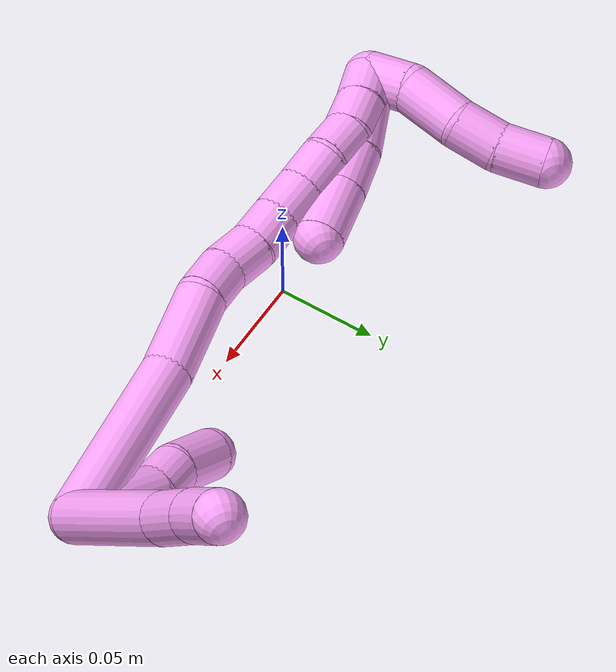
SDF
<sdf version="1.7">
 <world name="default">
  <model name="4">
   <static>0</static>
   <link name="4">
    <collision name="collision-cylinder-e_1_2_8">
     <pose>0.007621 -0.029574 0.032305 0.741284 0.172274 0.067087</pose>
     <geometry><cylinder><radius>0.0125</radius><length>0.088912</length></cylinder></geometry>
     <surface>
      <friction><ode><mu>1.16</mu><mu2>1.16</mu2><slip1>0</slip1><slip2>0</slip2></ode></friction>
      <contact><ode><kp>1e+06</kp><kd>1</kd><max_vel>0</max_vel><min_depth>0.001</min_depth></ode></contact>
     </surface>
    </collision>
    <visual name="visual-cylinder-e_1_2_8">
     <pose>0.007621 -0.029574 0.032305 0.741284 0.172274 0.067087</pose>
     <geometry><cylinder><radius>0.0125</radius><length>0.088912</length></cylinder></geometry>
     <material><ambient>1 0.65098 0.996078 1</ambient></material>
    </visual>
    <collision name="collision-cylinder-e_2_8_9">
     <pose>0.019425 -0.070339 0.076256 0.765485 0.253448 0.102497</pose>
     <geometry><cylinder><radius>0.0125</radius><length>0.033368</length></cylinder></geometry>
     <surface>
      <friction><ode><mu>1.16</mu><mu2>1.16</mu2><slip1>0</slip1><slip2>0</slip2></ode></friction>
      <contact><ode><kp>1e+06</kp><kd>1</kd><max_vel>0</max_vel><min_depth>0.001</min_depth></ode></contact>
     </surface>
    </collision>
    <visual name="visual-cylinder-e_2_8_9">
     <pose>0.019425 -0.070339 0.076256 0.765485 0.253448 0.102497</pose>
     <geometry><cylinder><radius>0.0125</radius><length>0.033368</length></cylinder></geometry>
     <material><ambient>1 0.65098 0.996078 1</ambient></material>
    </visual>
    <collision name="collision-cylinder-e_3_9_6">
     <pose>0.027434 -0.090244 0.097977 0.713128 0.27968 0.104765</pose>
     <geometry><cylinder><radius>0.0125</radius><length>0.02772</length></cylinder></geometry>
     <surface>
      <friction><ode><mu>1.16</mu><mu2>1.16</mu2><slip1>0</slip1><slip2>0</slip2></ode></friction>
      <contact><ode><kp>1e+06</kp><kd>1</kd><max_vel>0</max_vel><min_depth>0.001</min_depth></ode></contact>
     </surface>
    </collision>
    <visual name="visual-cylinder-e_3_9_6">
     <pose>0.027434 -0.090244 0.097977 0.713128 0.27968 0.104765</pose>
     <geometry><cylinder><radius>0.0125</radius><length>0.02772</length></cylinder></geometry>
     <material><ambient>1 0.65098 0.996078 1</ambient></material>
    </visual>
    <collision name="collision-cylinder-e_1_2_10">
     <pose>-0.022511 -0.00547 -0.009753 2.63041 -1.10977 -2.34367</pose>
     <geometry><cylinder><radius>0.0125</radius><length>0.050272</length></cylinder></geometry>
     <surface>
      <friction><ode><mu>1.16</mu><mu2>1.16</mu2><slip1>0</slip1><slip2>0</slip2></ode></friction>
      <contact><ode><kp>1e+06</kp><kd>1</kd><max_vel>0</max_vel><min_depth>0.001</min_depth></ode></contact>
     </surface>
    </collision>
    <visual name="visual-cylinder-e_1_2_10">
     <pose>-0.022511 -0.00547 -0.009753 2.63041 -1.10977 -2.34367</pose>
     <geometry><cylinder><radius>0.0125</radius><length>0.050272</length></cylinder></geometry>
     <material><ambient>1 0.65098 0.996078 1</ambient></material>
    </visual>
    <collision name="collision-cylinder-e_2_10_11">
     <pose>-0.05207 -0.013435 -0.026288 2.78922 -0.772806 -2.31663</pose>
     <geometry><cylinder><radius>0.0125</radius><length>0.020187</length></cylinder></geometry>
     <surface>
      <friction><ode><mu>1.16</mu><mu2>1.16</mu2><slip1>0</slip1><slip2>0</slip2></ode></friction>
      <contact><ode><kp>1e+06</kp><kd>1</kd><max_vel>0</max_vel><min_depth>0.001</min_depth></ode></contact>
     </surface>
    </collision>
    <visual name="visual-cylinder-e_2_10_11">
     <pose>-0.05207 -0.013435 -0.026288 2.78922 -0.772806 -2.31663</pose>
     <geometry><cylinder><radius>0.0125</radius><length>0.020187</length></cylinder></geometry>
     <material><ambient>1 0.65098 0.996078 1</ambient></material>
    </visual>
    <collision name="collision-cylinder-e_3_11_5">
     <pose>-0.071816 -0.01741 -0.040467 2.94398 -1.03478 -2.79668</pose>
     <geometry><cylinder><radius>0.0125</radius><length>0.029541</length></cylinder></geometry>
     <surface>
      <friction><ode><mu>1.16</mu><mu2>1.16</mu2><slip1>0</slip1><slip2>0</slip2></ode></friction>
      <contact><ode><kp>1e+06</kp><kd>1</kd><max_vel>0</max_vel><min_depth>0.001</min_depth></ode></contact>
     </surface>
    </collision>
    <visual name="visual-cylinder-e_3_11_5">
     <pose>-0.071816 -0.01741 -0.040467 2.94398 -1.03478 -2.79668</pose>
     <geometry><cylinder><radius>0.0125</radius><length>0.029541</length></cylinder></geometry>
     <material><ambient>1 0.65098 0.996078 1</ambient></material>
    </visual>
    <collision name="collision-cylinder-e_1_2_12">
     <pose>-0.024426 -0.022081 -0.033097 2.55324 -0.550599 -1.50081</pose>
     <geometry><cylinder><radius>0.0125</radius><length>0.093373</length></cylinder></geometry>
     <surface>
      <friction><ode><mu>1.16</mu><mu2>1.16</mu2><slip1>0</slip1><slip2>0</slip2></ode></friction>
      <contact><ode><kp>1e+06</kp><kd>1</kd><max_vel>0</max_vel><min_depth>0.001</min_depth></ode></contact>
     </surface>
    </collision>
    <visual name="visual-cylinder-e_1_2_12">
     <pose>-0.024426 -0.022081 -0.033097 2.55324 -0.550599 -1.50081</pose>
     <geometry><cylinder><radius>0.0125</radius><length>0.093373</length></cylinder></geometry>
     <material><ambient>1 0.65098 0.996078 1</ambient></material>
    </visual>
    <collision name="collision-cylinder-e_2_12_13">
     <pose>-0.057171 -0.056367 -0.082218 2.49068 -0.391654 -1.06286</pose>
     <geometry><cylinder><radius>0.0125</radius><length>0.043585</length></cylinder></geometry>
     <surface>
      <friction><ode><mu>1.16</mu><mu2>1.16</mu2><slip1>0</slip1><slip2>0</slip2></ode></friction>
      <contact><ode><kp>1e+06</kp><kd>1</kd><max_vel>0</max_vel><min_depth>0.001</min_depth></ode></contact>
     </surface>
    </collision>
    <visual name="visual-cylinder-e_2_12_13">
     <pose>-0.057171 -0.056367 -0.082218 2.49068 -0.391654 -1.06286</pose>
     <geometry><cylinder><radius>0.0125</radius><length>0.043585</length></cylinder></geometry>
     <material><ambient>1 0.65098 0.996078 1</ambient></material>
    </visual>
    <collision name="collision-cylinder-e_3_13_14">
     <pose>-0.072119 -0.072832 -0.105595 2.61649 -0.662489 -1.81493</pose>
     <geometry><cylinder><radius>0.0125</radius><length>0.021557</length></cylinder></geometry>
     <surface>
      <friction><ode><mu>1.16</mu><mu2>1.16</mu2><slip1>0</slip1><slip2>0</slip2></ode></friction>
      <contact><ode><kp>1e+06</kp><kd>1</kd><max_vel>0</max_vel><min_depth>0.001</min_depth></ode></contact>
     </surface>
    </collision>
    <visual name="visual-cylinder-e_3_13_14">
     <pose>-0.072119 -0.072832 -0.105595 2.61649 -0.662489 -1.81493</pose>
     <geometry><cylinder><radius>0.0125</radius><length>0.021557</length></cylinder></geometry>
     <material><ambient>1 0.65098 0.996078 1</ambient></material>
    </visual>
    <collision name="collision-cylinder-e_4_14_15">
     <pose>-0.085993 -0.082627 -0.117948 2.30541 -0.770816 -1.48007</pose>
     <geometry><cylinder><radius>0.0125</radius><length>0.020795</length></cylinder></geometry>
     <surface>
      <friction><ode><mu>1.16</mu><mu2>1.16</mu2><slip1>0</slip1><slip2>0</slip2></ode></friction>
      <contact><ode><kp>1e+06</kp><kd>1</kd><max_vel>0</max_vel><min_depth>0.001</min_depth></ode></contact>
     </surface>
    </collision>
    <visual name="visual-cylinder-e_4_14_15">
     <pose>-0.085993 -0.082627 -0.117948 2.30541 -0.770816 -1.48007</pose>
     <geometry><cylinder><radius>0.0125</radius><length>0.020795</length></cylinder></geometry>
     <material><ambient>1 0.65098 0.996078 1</ambient></material>
    </visual>
    <collision name="collision-cylinder-e_5_15_16">
     <pose>-0.098902 -0.093879 -0.128902 2.37649 -0.60139 -1.3132</pose>
     <geometry><cylinder><radius>0.0125</radius><length>0.020022</length></cylinder></geometry>
     <surface>
      <friction><ode><mu>1.16</mu><mu2>1.16</mu2><slip1>0</slip1><slip2>0</slip2></ode></friction>
      <contact><ode><kp>1e+06</kp><kd>1</kd><max_vel>0</max_vel><min_depth>0.001</min_depth></ode></contact>
     </surface>
    </collision>
    <visual name="visual-cylinder-e_5_15_16">
     <pose>-0.098902 -0.093879 -0.128902 2.37649 -0.60139 -1.3132</pose>
     <geometry><cylinder><radius>0.0125</radius><length>0.020022</length></cylinder></geometry>
     <material><ambient>1 0.65098 0.996078 1</ambient></material>
    </visual>
    <collision name="collision-cylinder-e_6_16_17">
     <pose>-0.110136 -0.10606 -0.140594 2.29679 -0.572501 -1.15958</pose>
     <geometry><cylinder><radius>0.0125</radius><length>0.020565</length></cylinder></geometry>
     <surface>
      <friction><ode><mu>1.16</mu><mu2>1.16</mu2><slip1>0</slip1><slip2>0</slip2></ode></friction>
      <contact><ode><kp>1e+06</kp><kd>1</kd><max_vel>0</max_vel><min_depth>0.001</min_depth></ode></contact>
     </surface>
    </collision>
    <visual name="visual-cylinder-e_6_16_17">
     <pose>-0.110136 -0.10606 -0.140594 2.29679 -0.572501 -1.15958</pose>
     <geometry><cylinder><radius>0.0125</radius><length>0.020565</length></cylinder></geometry>
     <material><ambient>1 0.65098 0.996078 1</ambient></material>
    </visual>
    <collision name="collision-cylinder-e_7_17_18">
     <pose>-0.120814 -0.119135 -0.151884 2.26933 -0.534183 -1.06178</pose>
     <geometry><cylinder><radius>0.0125</radius><length>0.020061</length></cylinder></geometry>
     <surface>
      <friction><ode><mu>1.16</mu><mu2>1.16</mu2><slip1>0</slip1><slip2>0</slip2></ode></friction>
      <contact><ode><kp>1e+06</kp><kd>1</kd><max_vel>0</max_vel><min_depth>0.001</min_depth></ode></contact>
     </surface>
    </collision>
    <visual name="visual-cylinder-e_7_17_18">
     <pose>-0.120814 -0.119135 -0.151884 2.26933 -0.534183 -1.06178</pose>
     <geometry><cylinder><radius>0.0125</radius><length>0.020061</length></cylinder></geometry>
     <material><ambient>1 0.65098 0.996078 1</ambient></material>
    </visual>
    <collision name="collision-cylinder-e_8_18_19">
     <pose>-0.132074 -0.130673 -0.163599 2.4672 -0.662345 -1.55136</pose>
     <geometry><cylinder><radius>0.0125</radius><length>0.020012</length></cylinder></geometry>
     <surface>
      <friction><ode><mu>1.16</mu><mu2>1.16</mu2><slip1>0</slip1><slip2>0</slip2></ode></friction>
      <contact><ode><kp>1e+06</kp><kd>1</kd><max_vel>0</max_vel><min_depth>0.001</min_depth></ode></contact>
     </surface>
    </collision>
    <visual name="visual-cylinder-e_8_18_19">
     <pose>-0.132074 -0.130673 -0.163599 2.4672 -0.662345 -1.55136</pose>
     <geometry><cylinder><radius>0.0125</radius><length>0.020012</length></cylinder></geometry>
     <material><ambient>1 0.65098 0.996078 1</ambient></material>
    </visual>
    <collision name="collision-cylinder-e_9_19_20">
     <pose>-0.142889 -0.139579 -0.177668 2.67532 -0.484725 -1.61111</pose>
     <geometry><cylinder><radius>0.0125</radius><length>0.020006</length></cylinder></geometry>
     <surface>
      <friction><ode><mu>1.16</mu><mu2>1.16</mu2><slip1>0</slip1><slip2>0</slip2></ode></friction>
      <contact><ode><kp>1e+06</kp><kd>1</kd><max_vel>0</max_vel><min_depth>0.001</min_depth></ode></contact>
     </surface>
    </collision>
    <visual name="visual-cylinder-e_9_19_20">
     <pose>-0.142889 -0.139579 -0.177668 2.67532 -0.484725 -1.61111</pose>
     <geometry><cylinder><radius>0.0125</radius><length>0.020006</length></cylinder></geometry>
     <material><ambient>1 0.65098 0.996078 1</ambient></material>
    </visual>
    <collision name="collision-cylinder-e_10_20_1">
     <pose>-0.151732 -0.146972 -0.194005 2.75676 -0.430971 -1.68695</pose>
     <geometry><cylinder><radius>0.0125</radius><length>0.020022</length></cylinder></geometry>
     <surface>
      <friction><ode><mu>1.16</mu><mu2>1.16</mu2><slip1>0</slip1><slip2>0</slip2></ode></friction>
      <contact><ode><kp>1e+06</kp><kd>1</kd><max_vel>0</max_vel><min_depth>0.001</min_depth></ode></contact>
     </surface>
    </collision>
    <visual name="visual-cylinder-e_10_20_1">
     <pose>-0.151732 -0.146972 -0.194005 2.75676 -0.430971 -1.68695</pose>
     <geometry><cylinder><radius>0.0125</radius><length>0.020022</length></cylinder></geometry>
     <material><ambient>1 0.65098 0.996078 1</ambient></material>
    </visual>
    <collision name="collision-cylinder-e_1_1_21">
     <pose>-0.161117 -0.15583 -0.193543 0.54931 -0.462905 -0.132621</pose>
     <geometry><cylinder><radius>0.0125</radius><length>0.023303</length></cylinder></geometry>
     <surface>
      <friction><ode><mu>1.16</mu><mu2>1.16</mu2><slip1>0</slip1><slip2>0</slip2></ode></friction>
      <contact><ode><kp>1e+06</kp><kd>1</kd><max_vel>0</max_vel><min_depth>0.001</min_depth></ode></contact>
     </surface>
    </collision>
    <visual name="visual-cylinder-e_1_1_21">
     <pose>-0.161117 -0.15583 -0.193543 0.54931 -0.462905 -0.132621</pose>
     <geometry><cylinder><radius>0.0125</radius><length>0.023303</length></cylinder></geometry>
     <material><ambient>1 0.65098 0.996078 1</ambient></material>
    </visual>
    <collision name="collision-cylinder-e_2_21_22">
     <pose>-0.173622 -0.163537 -0.171789 0.174199 -0.509747 -0.045493</pose>
     <geometry><cylinder><radius>0.0125</radius><length>0.029925</length></cylinder></geometry>
     <surface>
      <friction><ode><mu>1.16</mu><mu2>1.16</mu2><slip1>0</slip1><slip2>0</slip2></ode></friction>
      <contact><ode><kp>1e+06</kp><kd>1</kd><max_vel>0</max_vel><min_depth>0.001</min_depth></ode></contact>
     </surface>
    </collision>
    <visual name="visual-cylinder-e_2_21_22">
     <pose>-0.173622 -0.163537 -0.171789 0.174199 -0.509747 -0.045493</pose>
     <geometry><cylinder><radius>0.0125</radius><length>0.029925</length></cylinder></geometry>
     <material><ambient>1 0.65098 0.996078 1</ambient></material>
    </visual>
    <collision name="collision-cylinder-e_3_22_23">
     <pose>-0.188752 -0.167696 -0.150956 0.233512 -0.762777 -0.094003</pose>
     <geometry><cylinder><radius>0.0125</radius><length>0.022663</length></cylinder></geometry>
     <surface>
      <friction><ode><mu>1.16</mu><mu2>1.16</mu2><slip1>0</slip1><slip2>0</slip2></ode></friction>
      <contact><ode><kp>1e+06</kp><kd>1</kd><max_vel>0</max_vel><min_depth>0.001</min_depth></ode></contact>
     </surface>
    </collision>
    <visual name="visual-cylinder-e_3_22_23">
     <pose>-0.188752 -0.167696 -0.150956 0.233512 -0.762777 -0.094003</pose>
     <geometry><cylinder><radius>0.0125</radius><length>0.022663</length></cylinder></geometry>
     <material><ambient>1 0.65098 0.996078 1</ambient></material>
    </visual>
    <collision name="collision-cylinder-e_4_23_4">
     <pose>-0.205208 -0.173832 -0.135713 0.527743 -0.797543 -0.226695</pose>
     <geometry><cylinder><radius>0.0125</radius><length>0.024108</length></cylinder></geometry>
     <surface>
      <friction><ode><mu>1.16</mu><mu2>1.16</mu2><slip1>0</slip1><slip2>0</slip2></ode></friction>
      <contact><ode><kp>1e+06</kp><kd>1</kd><max_vel>0</max_vel><min_depth>0.001</min_depth></ode></contact>
     </surface>
    </collision>
    <visual name="visual-cylinder-e_4_23_4">
     <pose>-0.205208 -0.173832 -0.135713 0.527743 -0.797543 -0.226695</pose>
     <geometry><cylinder><radius>0.0125</radius><length>0.024108</length></cylinder></geometry>
     <material><ambient>1 0.65098 0.996078 1</ambient></material>
    </visual>
    <collision name="collision-cylinder-e_1_1_24">
     <pose>-0.150046 -0.140312 -0.183012 -0.478499 0.262039 -0.064263</pose>
     <geometry><cylinder><radius>0.0125</radius><length>0.045307</length></cylinder></geometry>
     <surface>
      <friction><ode><mu>1.16</mu><mu2>1.16</mu2><slip1>0</slip1><slip2>0</slip2></ode></friction>
      <contact><ode><kp>1e+06</kp><kd>1</kd><max_vel>0</max_vel><min_depth>0.001</min_depth></ode></contact>
     </surface>
    </collision>
    <visual name="visual-cylinder-e_1_1_24">
     <pose>-0.150046 -0.140312 -0.183012 -0.478499 0.262039 -0.064263</pose>
     <geometry><cylinder><radius>0.0125</radius><length>0.045307</length></cylinder></geometry>
     <material><ambient>1 0.65098 0.996078 1</ambient></material>
    </visual>
    <collision name="collision-cylinder-e_2_24_25">
     <pose>-0.139294 -0.12445 -0.153926 -0.539641 0.409111 -0.114625</pose>
     <geometry><cylinder><radius>0.0125</radius><length>0.024555</length></cylinder></geometry>
     <surface>
      <friction><ode><mu>1.16</mu><mu2>1.16</mu2><slip1>0</slip1><slip2>0</slip2></ode></friction>
      <contact><ode><kp>1e+06</kp><kd>1</kd><max_vel>0</max_vel><min_depth>0.001</min_depth></ode></contact>
     </surface>
    </collision>
    <visual name="visual-cylinder-e_2_24_25">
     <pose>-0.139294 -0.12445 -0.153926 -0.539641 0.409111 -0.114625</pose>
     <geometry><cylinder><radius>0.0125</radius><length>0.024555</length></cylinder></geometry>
     <material><ambient>1 0.65098 0.996078 1</ambient></material>
    </visual>
    <collision name="collision-cylinder-e_3_25_3">
     <pose>-0.127822 -0.111576 -0.132709 -0.550146 0.452419 -0.129726</pose>
     <geometry><cylinder><radius>0.0125</radius><length>0.030138</length></cylinder></geometry>
     <surface>
      <friction><ode><mu>1.16</mu><mu2>1.16</mu2><slip1>0</slip1><slip2>0</slip2></ode></friction>
      <contact><ode><kp>1e+06</kp><kd>1</kd><max_vel>0</max_vel><min_depth>0.001</min_depth></ode></contact>
     </surface>
    </collision>
    <visual name="visual-cylinder-e_3_25_3">
     <pose>-0.127822 -0.111576 -0.132709 -0.550146 0.452419 -0.129726</pose>
     <geometry><cylinder><radius>0.0125</radius><length>0.030138</length></cylinder></geometry>
     <material><ambient>1 0.65098 0.996078 1</ambient></material>
    </visual>
    <collision name="collision-sphere-3">
     <pose>-0.121235 -0.104491 -0.121156 0 -0 0</pose>
     <geometry><sphere><radius>0.0125</radius></sphere></geometry>
     <surface>
      <friction><ode><mu>1.16</mu><mu2>1.16</mu2><slip1>0</slip1><slip2>0</slip2></ode></friction>
      <contact><ode><kp>1e+06</kp><kd>1</kd><max_vel>0</max_vel><min_depth>0.001</min_depth></ode></contact>
     </surface>
    </collision>
    <visual name="visual-sphere-3">
     <pose>-0.121235 -0.104491 -0.121156 0 -0 0</pose>
     <geometry><sphere><radius>0.0125</radius></sphere></geometry>
     <material><ambient>1 0.65098 0.996078 1</ambient></material>
    </visual>
    <collision name="collision-sphere-25">
     <pose>-0.13441 -0.118662 -0.144262 0 -0 0</pose>
     <geometry><sphere><radius>0.0125</radius></sphere></geometry>
     <surface>
      <friction><ode><mu>1.16</mu><mu2>1.16</mu2><slip1>0</slip1><slip2>0</slip2></ode></friction>
      <contact><ode><kp>1e+06</kp><kd>1</kd><max_vel>0</max_vel><min_depth>0.001</min_depth></ode></contact>
     </surface>
    </collision>
    <visual name="visual-sphere-25">
     <pose>-0.13441 -0.118662 -0.144262 0 -0 0</pose>
     <geometry><sphere><radius>0.0125</radius></sphere></geometry>
     <material><ambient>1 0.65098 0.996078 1</ambient></material>
    </visual>
    <collision name="collision-sphere-24">
     <pose>-0.144178 -0.130238 -0.16359 0 -0 0</pose>
     <geometry><sphere><radius>0.0125</radius></sphere></geometry>
     <surface>
      <friction><ode><mu>1.16</mu><mu2>1.16</mu2><slip1>0</slip1><slip2>0</slip2></ode></friction>
      <contact><ode><kp>1e+06</kp><kd>1</kd><max_vel>0</max_vel><min_depth>0.001</min_depth></ode></contact>
     </surface>
    </collision>
    <visual name="visual-sphere-24">
     <pose>-0.144178 -0.130238 -0.16359 0 -0 0</pose>
     <geometry><sphere><radius>0.0125</radius></sphere></geometry>
     <material><ambient>1 0.65098 0.996078 1</ambient></material>
    </visual>
    <collision name="collision-sphere-4">
     <pose>-0.213834 -0.178071 -0.128439 0 -0 0</pose>
     <geometry><sphere><radius>0.0125</radius></sphere></geometry>
     <surface>
      <friction><ode><mu>1.16</mu><mu2>1.16</mu2><slip1>0</slip1><slip2>0</slip2></ode></friction>
      <contact><ode><kp>1e+06</kp><kd>1</kd><max_vel>0</max_vel><min_depth>0.001</min_depth></ode></contact>
     </surface>
    </collision>
    <visual name="visual-sphere-4">
     <pose>-0.213834 -0.178071 -0.128439 0 -0 0</pose>
     <geometry><sphere><radius>0.0125</radius></sphere></geometry>
     <material><ambient>1 0.65098 0.996078 1</ambient></material>
    </visual>
    <collision name="collision-sphere-23">
     <pose>-0.196582 -0.169592 -0.142987 0 -0 0</pose>
     <geometry><sphere><radius>0.0125</radius></sphere></geometry>
     <surface>
      <friction><ode><mu>1.16</mu><mu2>1.16</mu2><slip1>0</slip1><slip2>0</slip2></ode></friction>
      <contact><ode><kp>1e+06</kp><kd>1</kd><max_vel>0</max_vel><min_depth>0.001</min_depth></ode></contact>
     </surface>
    </collision>
    <visual name="visual-sphere-23">
     <pose>-0.196582 -0.169592 -0.142987 0 -0 0</pose>
     <geometry><sphere><radius>0.0125</radius></sphere></geometry>
     <material><ambient>1 0.65098 0.996078 1</ambient></material>
    </visual>
    <collision name="collision-sphere-22">
     <pose>-0.180923 -0.165801 -0.158926 0 -0 0</pose>
     <geometry><sphere><radius>0.0125</radius></sphere></geometry>
     <surface>
      <friction><ode><mu>1.16</mu><mu2>1.16</mu2><slip1>0</slip1><slip2>0</slip2></ode></friction>
      <contact><ode><kp>1e+06</kp><kd>1</kd><max_vel>0</max_vel><min_depth>0.001</min_depth></ode></contact>
     </surface>
    </collision>
    <visual name="visual-sphere-22">
     <pose>-0.180923 -0.165801 -0.158926 0 -0 0</pose>
     <geometry><sphere><radius>0.0125</radius></sphere></geometry>
     <material><ambient>1 0.65098 0.996078 1</ambient></material>
    </visual>
    <collision name="collision-sphere-21">
     <pose>-0.16632 -0.161273 -0.184652 0 -0 0</pose>
     <geometry><sphere><radius>0.0125</radius></sphere></geometry>
     <surface>
      <friction><ode><mu>1.16</mu><mu2>1.16</mu2><slip1>0</slip1><slip2>0</slip2></ode></friction>
      <contact><ode><kp>1e+06</kp><kd>1</kd><max_vel>0</max_vel><min_depth>0.001</min_depth></ode></contact>
     </surface>
    </collision>
    <visual name="visual-sphere-21">
     <pose>-0.16632 -0.161273 -0.184652 0 -0 0</pose>
     <geometry><sphere><radius>0.0125</radius></sphere></geometry>
     <material><ambient>1 0.65098 0.996078 1</ambient></material>
    </visual>
    <collision name="collision-sphere-1">
     <pose>-0.155914 -0.150387 -0.202435 0 -0 0</pose>
     <geometry><sphere><radius>0.0125</radius></sphere></geometry>
     <surface>
      <friction><ode><mu>1.16</mu><mu2>1.16</mu2><slip1>0</slip1><slip2>0</slip2></ode></friction>
      <contact><ode><kp>1e+06</kp><kd>1</kd><max_vel>0</max_vel><min_depth>0.001</min_depth></ode></contact>
     </surface>
    </collision>
    <visual name="visual-sphere-1">
     <pose>-0.155914 -0.150387 -0.202435 0 -0 0</pose>
     <geometry><sphere><radius>0.0125</radius></sphere></geometry>
     <material><ambient>1 0.65098 0.996078 1</ambient></material>
    </visual>
    <collision name="collision-sphere-11">
     <pose>-0.059117 -0.015929 -0.03307 0 -0 0</pose>
     <geometry><sphere><radius>0.0125</radius></sphere></geometry>
     <surface>
      <friction><ode><mu>1.16</mu><mu2>1.16</mu2><slip1>0</slip1><slip2>0</slip2></ode></friction>
      <contact><ode><kp>1e+06</kp><kd>1</kd><max_vel>0</max_vel><min_depth>0.001</min_depth></ode></contact>
     </surface>
    </collision>
    <visual name="visual-sphere-11">
     <pose>-0.059117 -0.015929 -0.03307 0 -0 0</pose>
     <geometry><sphere><radius>0.0125</radius></sphere></geometry>
     <material><ambient>1 0.65098 0.996078 1</ambient></material>
    </visual>
    <collision name="collision-sphere-10">
     <pose>-0.045023 -0.010941 -0.019505 0 -0 0</pose>
     <geometry><sphere><radius>0.0125</radius></sphere></geometry>
     <surface>
      <friction><ode><mu>1.16</mu><mu2>1.16</mu2><slip1>0</slip1><slip2>0</slip2></ode></friction>
      <contact><ode><kp>1e+06</kp><kd>1</kd><max_vel>0</max_vel><min_depth>0.001</min_depth></ode></contact>
     </surface>
    </collision>
    <visual name="visual-sphere-10">
     <pose>-0.045023 -0.010941 -0.019505 0 -0 0</pose>
     <geometry><sphere><radius>0.0125</radius></sphere></geometry>
     <material><ambient>1 0.65098 0.996078 1</ambient></material>
    </visual>
    <collision name="collision-sphere-6">
     <pose>0.03126 -0.098959 0.108053 0 -0 0</pose>
     <geometry><sphere><radius>0.0125</radius></sphere></geometry>
     <surface>
      <friction><ode><mu>1.16</mu><mu2>1.16</mu2><slip1>0</slip1><slip2>0</slip2></ode></friction>
      <contact><ode><kp>1e+06</kp><kd>1</kd><max_vel>0</max_vel><min_depth>0.001</min_depth></ode></contact>
     </surface>
    </collision>
    <visual name="visual-sphere-6">
     <pose>0.03126 -0.098959 0.108053 0 -0 0</pose>
     <geometry><sphere><radius>0.0125</radius></sphere></geometry>
     <material><ambient>1 0.65098 0.996078 1</ambient></material>
    </visual>
    <collision name="collision-sphere-9">
     <pose>0.023608 -0.081529 0.087902 0 -0 0</pose>
     <geometry><sphere><radius>0.0125</radius></sphere></geometry>
     <surface>
      <friction><ode><mu>1.16</mu><mu2>1.16</mu2><slip1>0</slip1><slip2>0</slip2></ode></friction>
      <contact><ode><kp>1e+06</kp><kd>1</kd><max_vel>0</max_vel><min_depth>0.001</min_depth></ode></contact>
     </surface>
    </collision>
    <visual name="visual-sphere-9">
     <pose>0.023608 -0.081529 0.087902 0 -0 0</pose>
     <geometry><sphere><radius>0.0125</radius></sphere></geometry>
     <material><ambient>1 0.65098 0.996078 1</ambient></material>
    </visual>
    <collision name="collision-sphere-2">
     <geometry><sphere><radius>0.0125</radius></sphere></geometry>
     <surface>
      <friction><ode><mu>1.16</mu><mu2>1.16</mu2><slip1>0</slip1><slip2>0</slip2></ode></friction>
      <contact><ode><kp>1e+06</kp><kd>1</kd><max_vel>0</max_vel><min_depth>0.001</min_depth></ode></contact>
     </surface>
    </collision>
    <visual name="visual-sphere-2">
     <geometry><sphere><radius>0.0125</radius></sphere></geometry>
     <material><ambient>1 0.65098 0.996078 1</ambient></material>
    </visual>
    <collision name="collision-sphere-19">
     <pose>-0.138228 -0.1356 -0.169762 0 -0 0</pose>
     <geometry><sphere><radius>0.0125</radius></sphere></geometry>
     <surface>
      <friction><ode><mu>1.16</mu><mu2>1.16</mu2><slip1>0</slip1><slip2>0</slip2></ode></friction>
      <contact><ode><kp>1e+06</kp><kd>1</kd><max_vel>0</max_vel><min_depth>0.001</min_depth></ode></contact>
     </surface>
    </collision>
    <visual name="visual-sphere-19">
     <pose>-0.138228 -0.1356 -0.169762 0 -0 0</pose>
     <geometry><sphere><radius>0.0125</radius></sphere></geometry>
     <material><ambient>1 0.65098 0.996078 1</ambient></material>
    </visual>
    <collision name="collision-sphere-8">
     <pose>0.015242 -0.059148 0.064611 0 -0 0</pose>
     <geometry><sphere><radius>0.0125</radius></sphere></geometry>
     <surface>
      <friction><ode><mu>1.16</mu><mu2>1.16</mu2><slip1>0</slip1><slip2>0</slip2></ode></friction>
      <contact><ode><kp>1e+06</kp><kd>1</kd><max_vel>0</max_vel><min_depth>0.001</min_depth></ode></contact>
     </surface>
    </collision>
    <visual name="visual-sphere-8">
     <pose>0.015242 -0.059148 0.064611 0 -0 0</pose>
     <geometry><sphere><radius>0.0125</radius></sphere></geometry>
     <material><ambient>1 0.65098 0.996078 1</ambient></material>
    </visual>
    <collision name="collision-sphere-5">
     <pose>-0.084515 -0.018891 -0.047864 0 -0 0</pose>
     <geometry><sphere><radius>0.0125</radius></sphere></geometry>
     <surface>
      <friction><ode><mu>1.16</mu><mu2>1.16</mu2><slip1>0</slip1><slip2>0</slip2></ode></friction>
      <contact><ode><kp>1e+06</kp><kd>1</kd><max_vel>0</max_vel><min_depth>0.001</min_depth></ode></contact>
     </surface>
    </collision>
    <visual name="visual-sphere-5">
     <pose>-0.084515 -0.018891 -0.047864 0 -0 0</pose>
     <geometry><sphere><radius>0.0125</radius></sphere></geometry>
     <material><ambient>1 0.65098 0.996078 1</ambient></material>
    </visual>
    <collision name="collision-sphere-12">
     <pose>-0.048853 -0.044162 -0.066194 0 -0 0</pose>
     <geometry><sphere><radius>0.0125</radius></sphere></geometry>
     <surface>
      <friction><ode><mu>1.16</mu><mu2>1.16</mu2><slip1>0</slip1><slip2>0</slip2></ode></friction>
      <contact><ode><kp>1e+06</kp><kd>1</kd><max_vel>0</max_vel><min_depth>0.001</min_depth></ode></contact>
     </surface>
    </collision>
    <visual name="visual-sphere-12">
     <pose>-0.048853 -0.044162 -0.066194 0 -0 0</pose>
     <geometry><sphere><radius>0.0125</radius></sphere></geometry>
     <material><ambient>1 0.65098 0.996078 1</ambient></material>
    </visual>
    <collision name="collision-sphere-13">
     <pose>-0.06549 -0.068571 -0.098242 0 -0 0</pose>
     <geometry><sphere><radius>0.0125</radius></sphere></geometry>
     <surface>
      <friction><ode><mu>1.16</mu><mu2>1.16</mu2><slip1>0</slip1><slip2>0</slip2></ode></friction>
      <contact><ode><kp>1e+06</kp><kd>1</kd><max_vel>0</max_vel><min_depth>0.001</min_depth></ode></contact>
     </surface>
    </collision>
    <visual name="visual-sphere-13">
     <pose>-0.06549 -0.068571 -0.098242 0 -0 0</pose>
     <geometry><sphere><radius>0.0125</radius></sphere></geometry>
     <material><ambient>1 0.65098 0.996078 1</ambient></material>
    </visual>
    <collision name="collision-sphere-14">
     <pose>-0.078749 -0.077092 -0.112948 0 -0 0</pose>
     <geometry><sphere><radius>0.0125</radius></sphere></geometry>
     <surface>
      <friction><ode><mu>1.16</mu><mu2>1.16</mu2><slip1>0</slip1><slip2>0</slip2></ode></friction>
      <contact><ode><kp>1e+06</kp><kd>1</kd><max_vel>0</max_vel><min_depth>0.001</min_depth></ode></contact>
     </surface>
    </collision>
    <visual name="visual-sphere-14">
     <pose>-0.078749 -0.077092 -0.112948 0 -0 0</pose>
     <geometry><sphere><radius>0.0125</radius></sphere></geometry>
     <material><ambient>1 0.65098 0.996078 1</ambient></material>
    </visual>
    <collision name="collision-sphere-15">
     <pose>-0.093237 -0.088162 -0.122948 0 -0 0</pose>
     <geometry><sphere><radius>0.0125</radius></sphere></geometry>
     <surface>
      <friction><ode><mu>1.16</mu><mu2>1.16</mu2><slip1>0</slip1><slip2>0</slip2></ode></friction>
      <contact><ode><kp>1e+06</kp><kd>1</kd><max_vel>0</max_vel><min_depth>0.001</min_depth></ode></contact>
     </surface>
    </collision>
    <visual name="visual-sphere-15">
     <pose>-0.093237 -0.088162 -0.122948 0 -0 0</pose>
     <geometry><sphere><radius>0.0125</radius></sphere></geometry>
     <material><ambient>1 0.65098 0.996078 1</ambient></material>
    </visual>
    <collision name="collision-sphere-16">
     <pose>-0.104566 -0.099597 -0.134856 0 -0 0</pose>
     <geometry><sphere><radius>0.0125</radius></sphere></geometry>
     <surface>
      <friction><ode><mu>1.16</mu><mu2>1.16</mu2><slip1>0</slip1><slip2>0</slip2></ode></friction>
      <contact><ode><kp>1e+06</kp><kd>1</kd><max_vel>0</max_vel><min_depth>0.001</min_depth></ode></contact>
     </surface>
    </collision>
    <visual name="visual-sphere-16">
     <pose>-0.104566 -0.099597 -0.134856 0 -0 0</pose>
     <geometry><sphere><radius>0.0125</radius></sphere></geometry>
     <material><ambient>1 0.65098 0.996078 1</ambient></material>
    </visual>
    <collision name="collision-sphere-17">
     <pose>-0.115707 -0.112524 -0.146332 0 -0 0</pose>
     <geometry><sphere><radius>0.0125</radius></sphere></geometry>
     <surface>
      <friction><ode><mu>1.16</mu><mu2>1.16</mu2><slip1>0</slip1><slip2>0</slip2></ode></friction>
      <contact><ode><kp>1e+06</kp><kd>1</kd><max_vel>0</max_vel><min_depth>0.001</min_depth></ode></contact>
     </surface>
    </collision>
    <visual name="visual-sphere-17">
     <pose>-0.115707 -0.112524 -0.146332 0 -0 0</pose>
     <geometry><sphere><radius>0.0125</radius></sphere></geometry>
     <material><ambient>1 0.65098 0.996078 1</ambient></material>
    </visual>
    <collision name="collision-sphere-18">
     <pose>-0.125921 -0.125746 -0.157436 0 -0 0</pose>
     <geometry><sphere><radius>0.0125</radius></sphere></geometry>
     <surface>
      <friction><ode><mu>1.16</mu><mu2>1.16</mu2><slip1>0</slip1><slip2>0</slip2></ode></friction>
      <contact><ode><kp>1e+06</kp><kd>1</kd><max_vel>0</max_vel><min_depth>0.001</min_depth></ode></contact>
     </surface>
    </collision>
    <visual name="visual-sphere-18">
     <pose>-0.125921 -0.125746 -0.157436 0 -0 0</pose>
     <geometry><sphere><radius>0.0125</radius></sphere></geometry>
     <material><ambient>1 0.65098 0.996078 1</ambient></material>
    </visual>
    <collision name="collision-sphere-20">
     <pose>-0.14755 -0.143558 -0.185574 0 -0 0</pose>
     <geometry><sphere><radius>0.0125</radius></sphere></geometry>
     <surface>
      <friction><ode><mu>1.16</mu><mu2>1.16</mu2><slip1>0</slip1><slip2>0</slip2></ode></friction>
      <contact><ode><kp>1e+06</kp><kd>1</kd><max_vel>0</max_vel><min_depth>0.001</min_depth></ode></contact>
     </surface>
    </collision>
    <visual name="visual-sphere-20">
     <pose>-0.14755 -0.143558 -0.185574 0 -0 0</pose>
     <geometry><sphere><radius>0.0125</radius></sphere></geometry>
     <material><ambient>1 0.65098 0.996078 1</ambient></material>
    </visual>
    <inertial>
     <pose>-0.077051 -0.080585 -0.076178 0 -0 0</pose>
     <mass>0.75</mass>
     <inertia><ixx>-5e-06</ixx><ixy>0</ixy><ixz>0</ixz><iyy>9e-06</iyy><iyz>0</iyz><izz>0.000141</izz></inertia>
    </inertial>
   </link>
   <pose>0.193278 0.012866 0.055795 -1.39809 -0.669444 -0.768946</pose>
  </model>
 </world>
</sdf>
